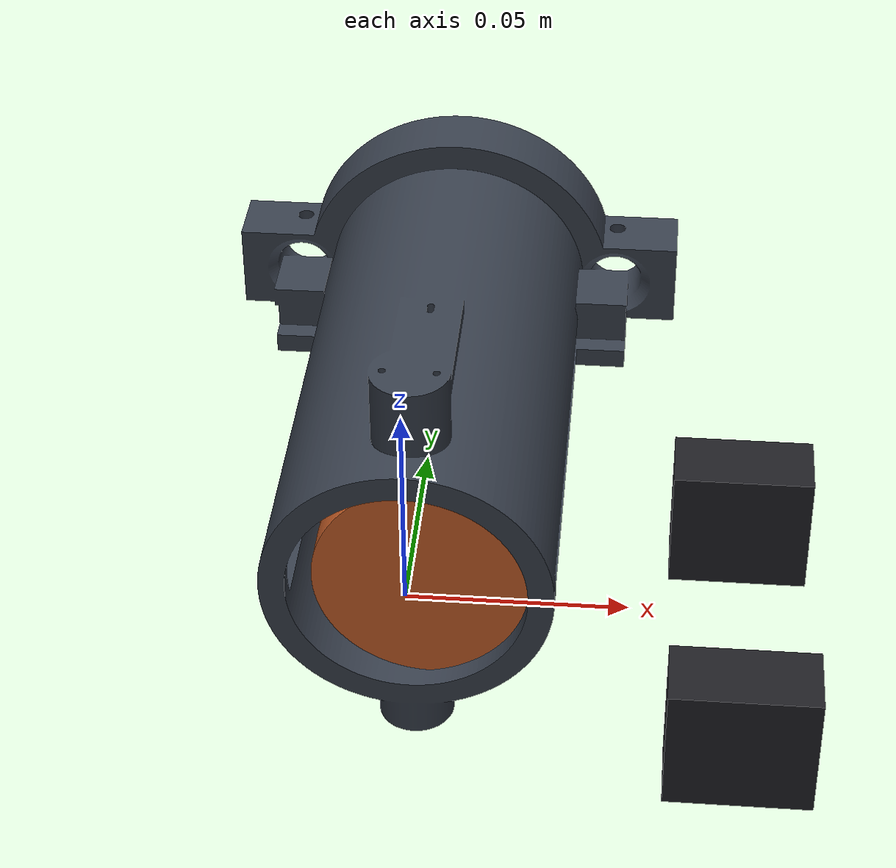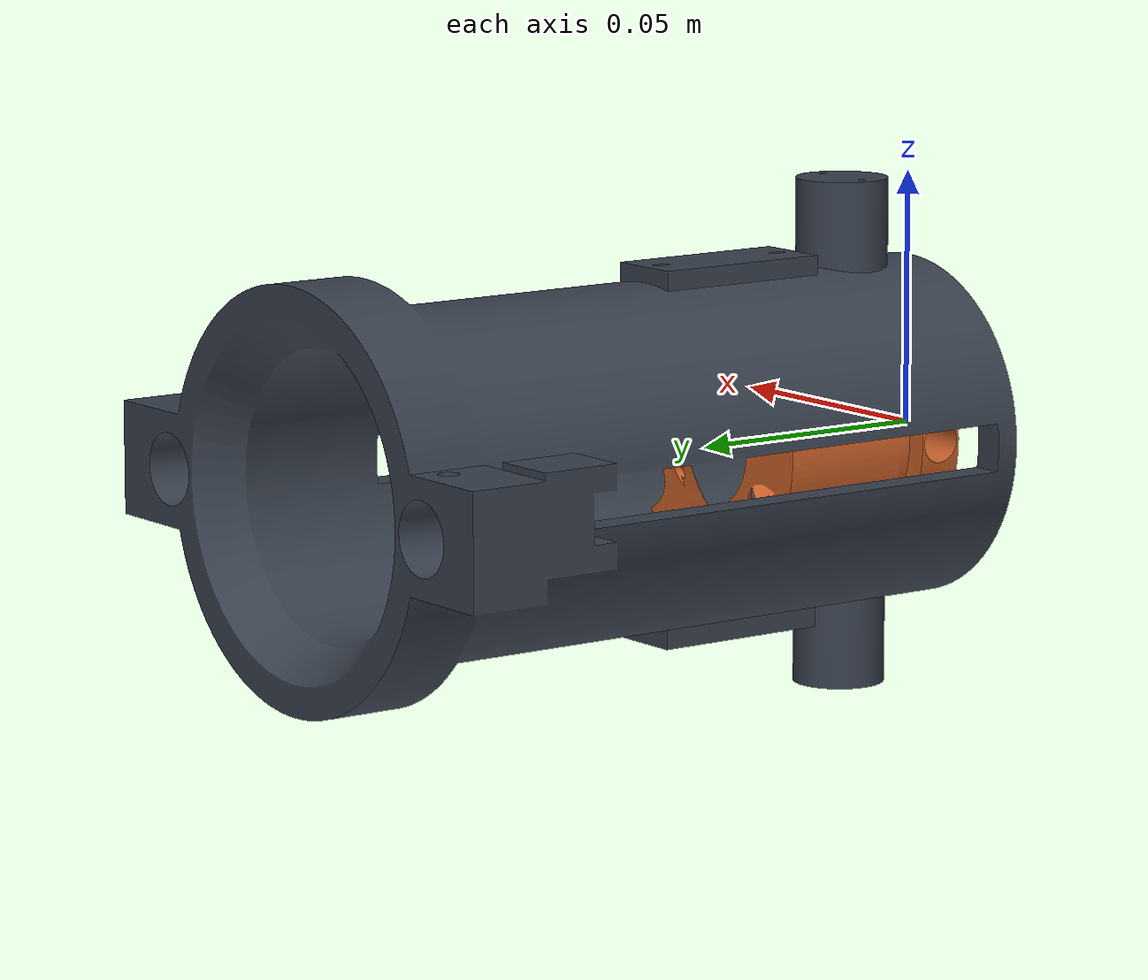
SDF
<?xml version="1.0"?>
<sdf version="1.9">
  <model name="ag_firlatici">

    <!-- ===== TASIYICI GOVDE (namlu + bantlar + tetik donanimi) ===== -->
    <link name="namlu">
      <inertial>
        <pose>0.07492 0.00000 0.00000 0 0 0</pose>
        <mass>0.25080</mass>
        <inertia><ixx>1.911e-04</ixx><iyy>5.647e-04</iyy><izz>5.647e-04</izz>
          <ixy>0</ixy><ixz>0</ixz><iyz>0</iyz></inertia>
      </inertial>
      <visual name="v_namlu">
        <pose>0 0 0 0 1.5708 0</pose>
        <geometry><mesh><uri>model://ag_firlatici/meshes/namlu.stl</uri>
          <scale>0.001 0.001 0.001</scale></mesh></geometry>
        <material><ambient>0.18 0.20 0.24 1</ambient>
                  <diffuse>0.22 0.25 0.30 1</diffuse></material>
      </visual>
      <!-- Carpisma: STL yerine SILINDIR. Ucus simulasyonunda namlunun
           ic detayi gereksiz; silindir hem hizli hem kararli. -->
      <collision name="c_namlu">
        <pose>0.07492 0 0 0 1.5708 0</pose>
        <geometry><cylinder><radius>0.02770</radius>
          <length>0.14983</length></cylinder></geometry>
      </collision>
    </link>

    <!-- ===== KAPSUL (ag + 6 bilye icinde) =====
         Dinlenmede strok sonunda; atista ileri kayip tamponlara carpar.
         Prizmatik eklem NAMLU EKSENINDE (+X). -->
    <link name="kapsul">
      <pose>0.02550 0 0 0 0 0</pose>
      <inertial>
        <pose>0.00000 0.00000 0.00000 0 0 0</pose>
        <mass>0.13800</mass>
        <inertia><ixx>3.204e-05</ixx><iyy>3.535e-05</iyy><izz>3.535e-05</izz>
          <ixy>0</ixy><ixz>0</ixz><iyz>0</iyz></inertia>
      </inertial>
      <visual name="v_kapsul">
        <pose>-0.02050 0 0 0 1.5708 0</pose>
        <geometry><mesh><uri>model://ag_firlatici/meshes/kapsul.stl</uri>
          <scale>0.001 0.001 0.001</scale></mesh></geometry>
        <material><ambient>0.65 0.30 0.12 1</ambient>
                  <diffuse>0.80 0.38 0.16 1</diffuse></material>
      </visual>
    </link>
    <joint name="kapsul_kayit" type="prismatic">
      <parent>namlu</parent><child>kapsul</child>
      <axis><xyz>1 0 0</xyz>
        <limit><lower>0</lower><upper>0.0910</upper></limit>
        <dynamics><damping>0.5</damping></dynamics></axis>
    </joint>

    <!-- ===== SERVOLAR (mikro, metal disli, ~14 g) ===== -->
    <link name="servo_sag">
      <pose>0.07492 0.03570 0 0 0 0</pose>
      <inertial>
        <pose>0.00000 0.00000 0.00000 0 0 0</pose>
        <mass>0.01430</mass>
        <inertia><ixx>1.378e-06</ixx><iyy>2.293e-06</iyy><izz>1.525e-06</izz>
          <ixy>0</ixy><ixz>0</ixz><iyz>0</iyz></inertia>
      </inertial>
      <visual name="v_servo_sag"><geometry><box><size>
        0.0320 0.0160 0.0300</size></box></geometry>
        <material><ambient>0.08 0.08 0.09 1</ambient>
                  <diffuse>0.12 0.12 0.14 1</diffuse></material></visual>
    </link>
    <joint name="servo_sag_baglanti" type="fixed">
      <parent>namlu</parent><child>servo_sag</child>
    </joint>
    <link name="servo_sol">
      <pose>0.07492 -0.03570 0 0 0 0</pose>
      <inertial>
        <pose>0.00000 0.00000 0.00000 0 0 0</pose>
        <mass>0.01430</mass>
        <inertia><ixx>1.378e-06</ixx><iyy>2.293e-06</iyy><izz>1.525e-06</izz>
          <ixy>0</ixy><ixz>0</ixz><iyz>0</iyz></inertia>
      </inertial>
      <visual name="v_servo_sol"><geometry><box><size>
        0.0320 0.0160 0.0300</size></box></geometry>
        <material><ambient>0.08 0.08 0.09 1</ambient>
                  <diffuse>0.12 0.12 0.14 1</diffuse></material></visual>
    </link>
    <joint name="servo_sol_baglanti" type="fixed">
      <parent>namlu</parent><child>servo_sol</child>
    </joint>

    <!-- ===== MONTAJ ARAYUZU =====
         Kendi govdene baglarken BU cerceveyi referans al.
         Namlu ortasi, ust yuzey. -->
    <frame name="montaj" attached_to="namlu">
      <pose>0.07492 0 0.02770 0 0 0</pose>
    </frame>
    <!-- Agiz ucu: ag buradan cikar; tetikleme mesafesi buradan olculur -->
    <frame name="agiz" attached_to="namlu">
      <pose>0.14983 0 0 0 0 0</pose>
    </frame>

  </model>
</sdf>
